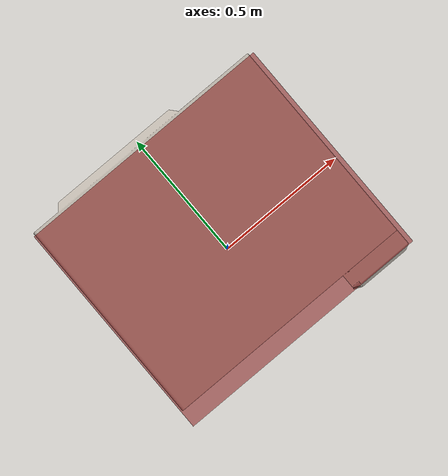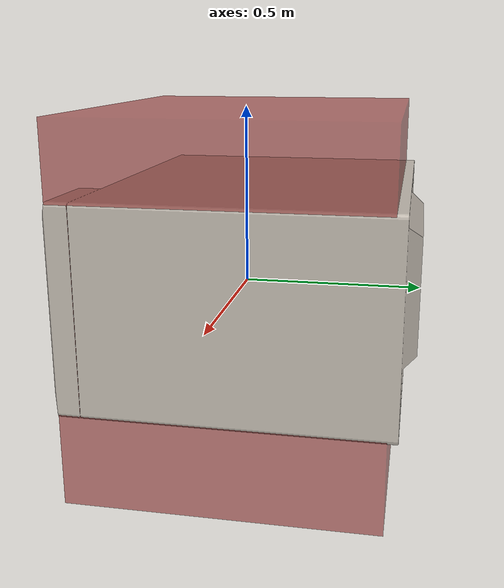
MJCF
<mujoco model="model">
  <asset>
    <texture file="visuals/material_0.png" name="tex-model" type="2d"/>
    <texture type="2d" name="image25" file="visuals/image25.png"/>
    <texture type="2d" name="image28" file="visuals/image28.png"/>
    <texture type="2d" name="image31" file="visuals/image31.png"/>
    <material name="model" reflectance="0.5" texrepeat="1 1" texture="tex-model" texuniform="false"/>
    <material name="TX_Stove_3_3" texture="image25" specular="0.5" shininess="0.25"/>
    <material name="TX_Stove_3_4" texture="image28" specular="0.5" shininess="0.25"/>
    <material name="TX_Stove_3_5" texture="image31" specular="0.5" shininess="0.25"/>
    <mesh file="visuals/model_0.obj" name="model_0_vis" scale="1 1 1"/>
    <mesh file="visuals/model_1.obj" name="model_1_vis" scale="1 1 1"/>
    <mesh file="visuals/model_2.obj" name="model_2_vis" scale="1 1 1"/>
  </asset>
  <default>
    <default class="visual">
      <geom conaffinity="0" contype="0" group="1" type="mesh"/>
    </default>
    <default class="collision">
      <geom group="0" rgba="0.5 0 0 0.5"/>
    </default>
    <default class="region">
      <geom group="1" conaffinity="0" contype="0" rgba="0 1 0 0"/>
    </default>
  </default>
  <worldbody>
    <body>
      <!-- exterior bounding box points -->
      <!-- interior bounding box points -->
      <body name="object">
        <geom solimp="0.998 0.998 0.001" solref="0.001 1" density="100" friction="0.95 0.3 0.1" type="mesh" mesh="model_0_vis" material="TX_Stove_3_5" class="visual"/>
        <geom solimp="0.998 0.998 0.001" solref="0.001 1" density="100" friction="0.95 0.3 0.1" type="mesh" mesh="model_1_vis" material="TX_Stove_3_4" class="visual"/>
        <geom solimp="0.998 0.998 0.001" solref="0.001 1" density="100" friction="0.95 0.3 0.1" type="mesh" mesh="model_2_vis" material="TX_Stove_3_3" class="visual"/>
        <geom class="collision" type="box" pos="0 0.023 0" size="0.4811352361493858 0.415 0.5"/>
        <geom class="region" name="reg_main" type="box" pos="0.0 0.022953602210111668 0.0" size="0.4811352361493858 0.4149536022101117 0.5"/>
      </body>
    </body>
  </worldbody>
</mujoco>
